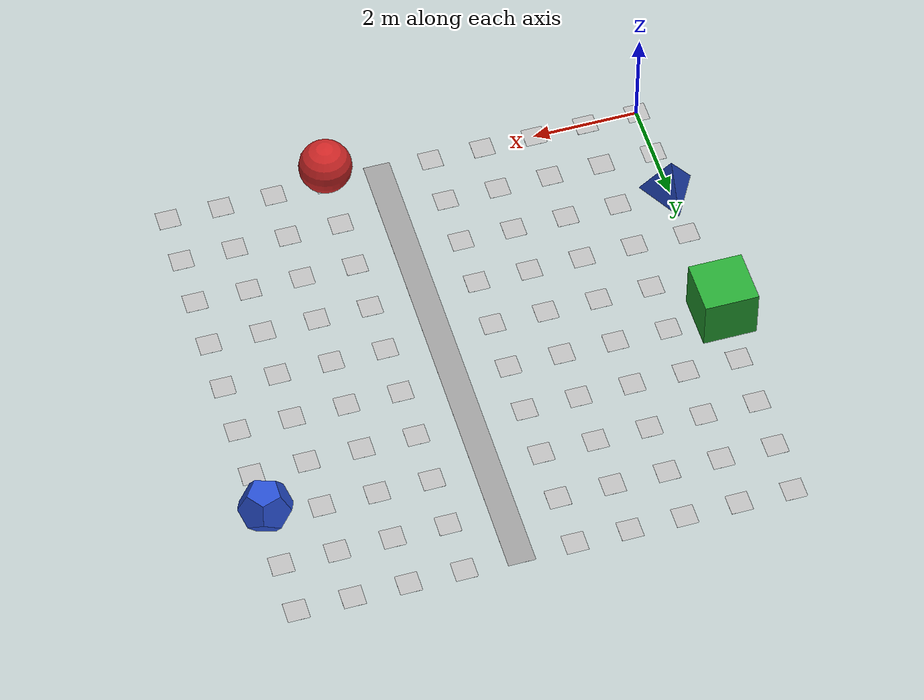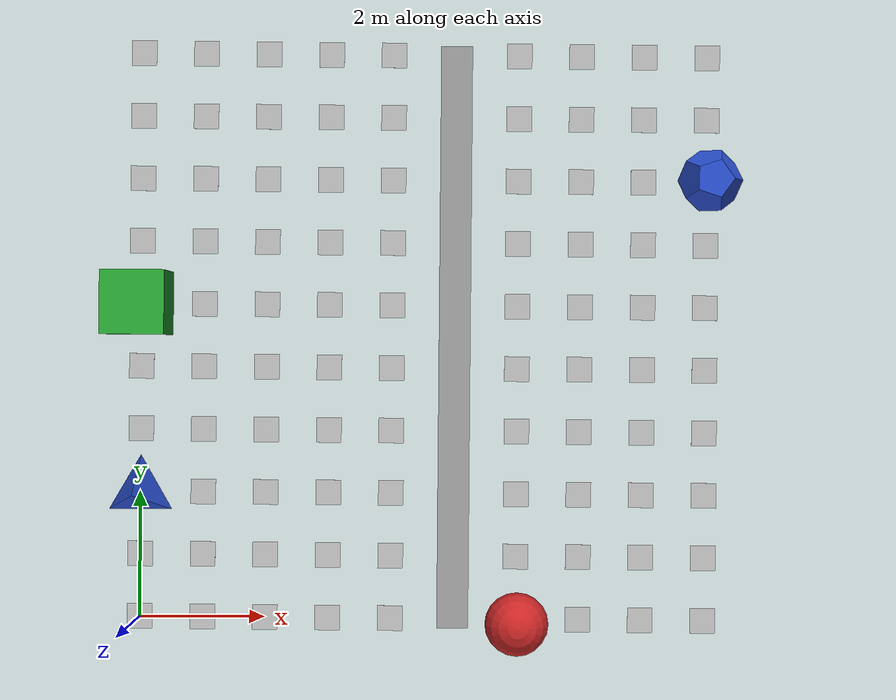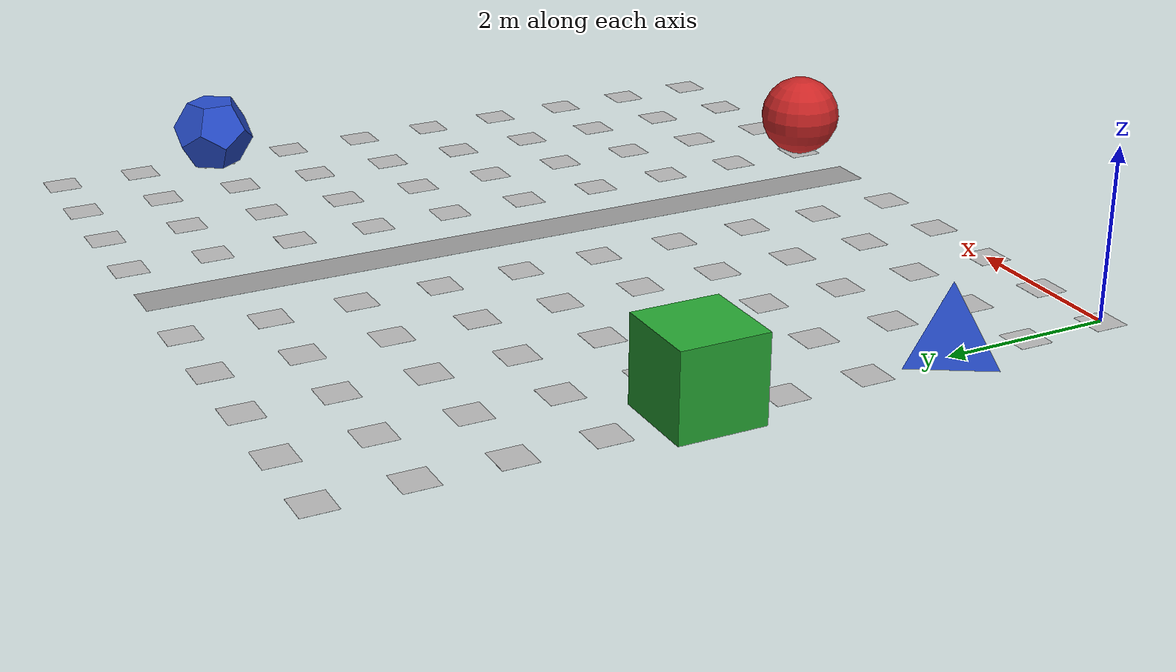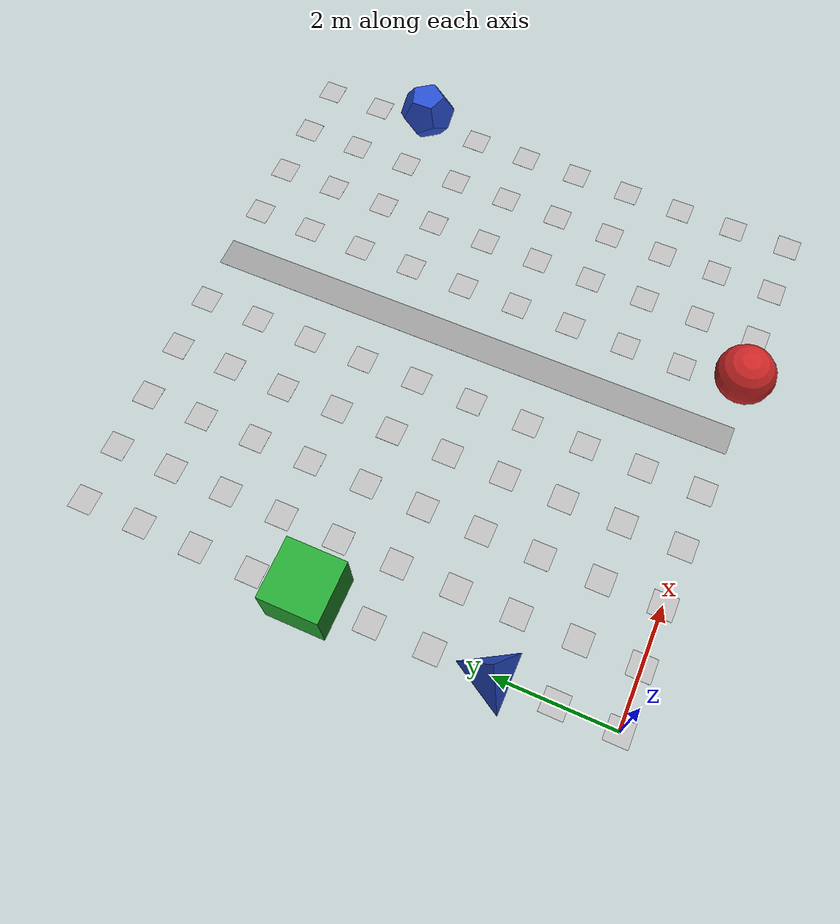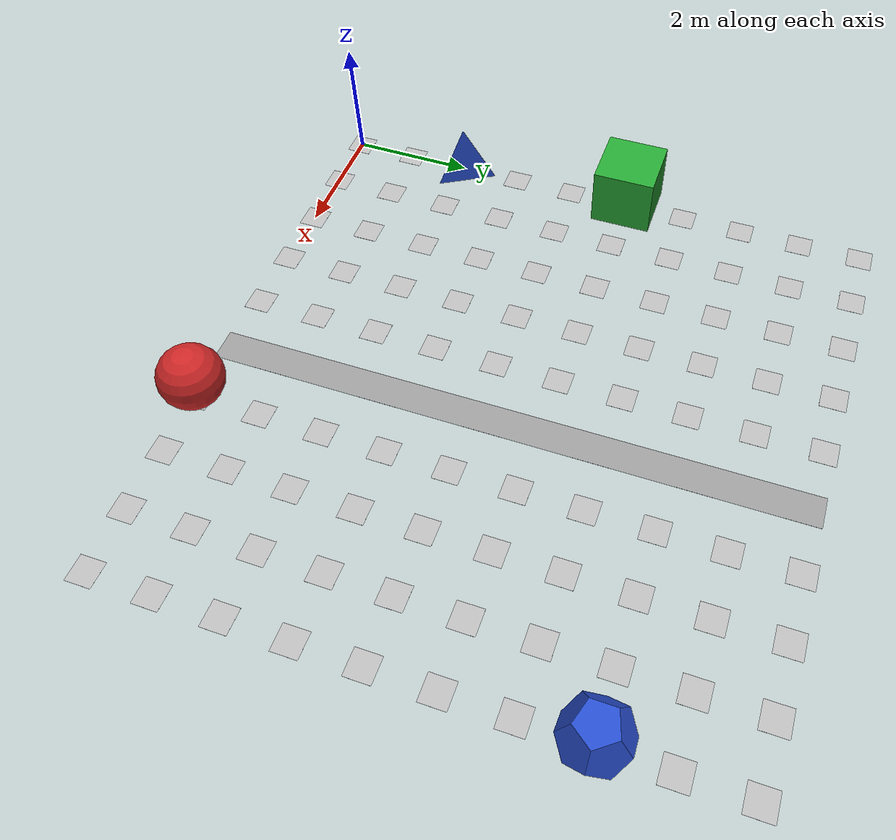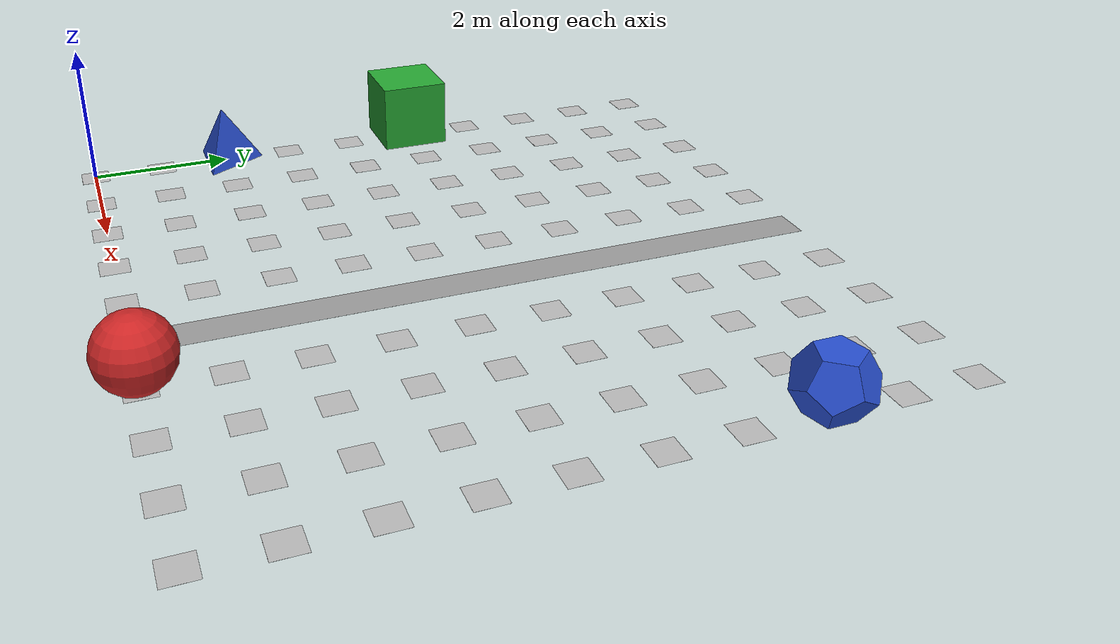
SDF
<sdf version="1.5">
 <world name="default">
  <include><uri>model://aruco_map_nto_txt</uri></include>
  <include><uri>model://sun</uri></include>
  <model name="center_line">
   <pose>5 4.5 0.01 0 0 0</pose>
   <link name="link">
    <collision name="collision"><geometry><box><size>0.5 9.3 0.001</size></box></geometry></collision>
    <visual name="visual">
     <geometry><box><size>0.5 9.3 0.001</size></box></geometry>
     <material>
      <script><name>Gazebo/Gray</name><uri>file://media/materials/scripts/gazebo.material</uri></script>
     </material>
    </visual>
   </link>
   <static>1</static>
  </model>
  <model name="sphere">
   <pose>6 0 0.5 0 0 0</pose>
   <link name="sphere_link">
    <collision name="sphere_collision"><geometry><sphere><radius>0.5</radius></sphere></geometry></collision>
    <visual name="sphere_visual">
     <geometry><sphere><radius>0.5</radius></sphere></geometry>
     <material>
      <script><name>Gazebo/Red</name><uri>file://media/materials/scripts/gazebo.material</uri></script>
     </material>
    </visual>
   </link>
   <static>1</static>
  </model>
  <model name="box">
   <pose>0 5 0.5 0 0 0</pose>
   <link name="link">
    <collision name="collision"><geometry><box><size>1 1 1</size></box></geometry></collision>
    <visual name="visual">
     <geometry><box><size>1 1 1</size></box></geometry>
     <material>
      <script><name>Gazebo/Green</name><uri>file://media/materials/scripts/gazebo.material</uri></script>
     </material>
    </visual>
   </link>
   <static>1</static>
  </model>
  <model name="TriangleS">
   <pose>0 2 0.2 0 0 0</pose>
   <link name="link_0">
    <inertial>
     <mass>1</mass>
     <inertia>
      <ixx>0.166667</ixx>
      <ixy>0</ixy>
      <ixz>0</ixz>
      <iyy>0.166667</iyy>
      <iyz>0</iyz>
      <izz>0.166667</izz>
     </inertia>
    </inertial>
    <visual name="visual">
     <geometry><mesh><uri>/home/clover/triangle.dae</uri><scale>1 1 1</scale></mesh></geometry>
     <material>
      <lighting>1</lighting>
      <script><uri>file://media/materials/scripts/gazebo.material</uri><name>Gazebo/Blue</name></script>
      <shader type="pixel"><normal_map>__default__</normal_map></shader>
      <ambient>0 0 1 1</ambient>
      <diffuse>0 0 1 1</diffuse>
      <specular>0.00 0.00 0.01 1</specular>
      <emissive>0 0 0 1</emissive>
     </material>
    </visual>
    <collision name="collision">
     <geometry><mesh><uri>/home/clover/triangle.dae</uri><scale>1 1 1</scale></mesh></geometry>
     <surface>
      <friction>
       <ode><mu>1</mu><mu2>1</mu2><fdir1>0 0 0</fdir1><slip1>0</slip1><slip2>0</slip2></ode>
       <torsional>
        <coefficient>1</coefficient>
        <patch_radius>0</patch_radius>
        <surface_radius>0</surface_radius>
        <use_patch_radius>1</use_patch_radius>
        <ode><slip>0</slip></ode>
       </torsional>
      </friction>
      <bounce><restitution_coefficient>0</restitution_coefficient><threshold>1e+06</threshold></bounce>
      <contact>
       <collide_without_contact>0</collide_without_contact>
       <collide_without_contact_bitmask>1</collide_without_contact_bitmask>
       <collide_bitmask>1</collide_bitmask>
       <ode>
        <soft_cfm>0</soft_cfm>
        <soft_erp>0.2</soft_erp>
        <kp>1e+13</kp>
        <kd>1</kd>
        <max_vel>0.01</max_vel>
        <min_depth>0</min_depth>
       </ode>
       <bullet>
        <split_impulse>1</split_impulse>
        <split_impulse_penetration_threshold>-0.01</split_impulse_penetration_threshold>
        <soft_cfm>0</soft_cfm>
        <soft_erp>0.2</soft_erp>
        <kp>1e+13</kp>
        <kd>1</kd>
       </bullet>
      </contact>
     </surface>
    </collision>
   </link>
   <static>1</static>
  </model>
  <model name="Dodecaedr">
   <pose>9 7 0.4 0 0 0</pose>
   <link name="link_1">
    <inertial>
     <mass>1</mass>
     <inertia>
      <ixx>0.166667</ixx>
      <ixy>0</ixy>
      <ixz>0</ixz>
      <iyy>0.166667</iyy>
      <iyz>0</iyz>
      <izz>0.166667</izz>
     </inertia>
    </inertial>
    <visual name="visual">
     <geometry><mesh><uri>/home/clover/dodecaedr.dae</uri><scale>1 1 1</scale></mesh></geometry>
     <material>
      <lighting>1</lighting>
      <script><uri>file://media/materials/scripts/gazebo.material</uri><name>Gazebo/Blue</name></script>
      <shader type="vertex"><normal_map>__default__</normal_map></shader>
      <ambient>1 0 1 1</ambient>
      <diffuse>1 0 1 1</diffuse>
      <specular>0.01 0 0.01 1</specular>
      <emissive>0 0 0 1</emissive>
     </material>
    </visual>
    <collision name="collision">
     <geometry><mesh><uri>/home/clover/dodecaedr.dae</uri><scale>1 1 1</scale></mesh></geometry>
     <surface>
      <friction>
       <ode><mu>1</mu><mu2>1</mu2><fdir1>0 0 0</fdir1><slip1>0</slip1><slip2>0</slip2></ode>
       <torsional>
        <coefficient>1</coefficient>
        <patch_radius>0</patch_radius>
        <surface_radius>0</surface_radius>
        <use_patch_radius>1</use_patch_radius>
        <ode><slip>0</slip></ode>
       </torsional>
      </friction>
      <bounce><restitution_coefficient>0</restitution_coefficient><threshold>1e+06</threshold></bounce>
      <contact>
       <collide_without_contact>0</collide_without_contact>
       <collide_without_contact_bitmask>1</collide_without_contact_bitmask>
       <collide_bitmask>1</collide_bitmask>
       <ode>
        <soft_cfm>0</soft_cfm>
        <soft_erp>0.2</soft_erp>
        <kp>1e+13</kp>
        <kd>1</kd>
        <max_vel>0.01</max_vel>
        <min_depth>0</min_depth>
       </ode>
       <bullet>
        <split_impulse>1</split_impulse>
        <split_impulse_penetration_threshold>-0.01</split_impulse_penetration_threshold>
        <soft_cfm>0</soft_cfm>
        <soft_erp>0.2</soft_erp>
        <kp>1e+13</kp>
        <kd>1</kd>
       </bullet>
      </contact>
     </surface>
    </collision>
   </link>
   <static>1</static>
  </model>
  <scene>
   <ambient>0.8 0.8 0.8 1</ambient>
   <background>0.8 0.9 1 1</background>
   <shadows>false</shadows>
   <grid>false</grid>
   <origin_visual>false</origin_visual>
  </scene>
  <physics name="default_physics" default="0" type="ode">
   <gravity>0 0 -9.8066</gravity>
   <ode>
    <solver>
     <type>quick</type>
     <iters>10</iters>
     <sor>1.3</sor>
     <use_dynamic_moi_rescaling>0</use_dynamic_moi_rescaling>
    </solver>
    <constraints>
     <cfm>0</cfm>
     <erp>0.2</erp>
     <contact_max_correcting_vel>100</contact_max_correcting_vel>
     <contact_surface_layer>0.001</contact_surface_layer>
    </constraints>
   </ode>
   <max_step_size>0.004</max_step_size>
   <real_time_factor>1</real_time_factor>
   <real_time_update_rate>250</real_time_update_rate>
   <magnetic_field>6.0e-6 2.3e-5 -4.2e-5</magnetic_field>
  </physics>
 </world>
</sdf>

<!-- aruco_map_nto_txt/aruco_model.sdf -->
<sdf version="1.5">
    <model name="aruco_2_90">
        <static>true</static>
        <link name="aruco_2_90_link">

<visual name="visual_marker_2_0">
    <pose>0.0 0.0 0.0 0.0 0.0 1.5707963267948966</pose>
    <cast_shadows>false</cast_shadows>
    <geometry>
        <box>
            <size>0.39999999999999997 0.39999999999999997 1e-3</size>
        </box>
    </geometry>
    <material>
        <script>
            <uri>model://aruco_map_nto_txt/materials/scripts</uri>
            <uri>model://aruco_map_nto_txt/materials/textures</uri>
            <name>aruco/marker_2_0</name>
        </script>
    </material>
</visual>

<visual name="visual_marker_2_1">
    <pose>1.0 0.0 0.0 0.0 0.0 1.5707963267948966</pose>
    <cast_shadows>false</cast_shadows>
    <geometry>
        <box>
            <size>0.39999999999999997 0.39999999999999997 1e-3</size>
        </box>
    </geometry>
    <material>
        <script>
            <uri>model://aruco_map_nto_txt/materials/scripts</uri>
            <uri>model://aruco_map_nto_txt/materials/textures</uri>
            <name>aruco/marker_2_1</name>
        </script>
    </material>
</visual>

<visual name="visual_marker_2_2">
    <pose>2.0 0.0 0.0 0.0 0.0 1.5707963267948966</pose>
    <cast_shadows>false</cast_shadows>
    <geometry>
        <box>
            <size>0.39999999999999997 0.39999999999999997 1e-3</size>
        </box>
    </geometry>
    <material>
        <script>
            <uri>model://aruco_map_nto_txt/materials/scripts</uri>
            <uri>model://aruco_map_nto_txt/materials/textures</uri>
            <name>aruco/marker_2_2</name>
        </script>
    </material>
</visual>

<visual name="visual_marker_2_3">
    <pose>3.0 0.0 0.0 0.0 0.0 1.5707963267948966</pose>
    <cast_shadows>false</cast_shadows>
    <geometry>
        <box>
            <size>0.39999999999999997 0.39999999999999997 1e-3</size>
        </box>
    </geometry>
    <material>
        <script>
            <uri>model://aruco_map_nto_txt/materials/scripts</uri>
            <uri>model://aruco_map_nto_txt/materials/textures</uri>
            <name>aruco/marker_2_3</name>
        </script>
    </material>
</visual>

<visual name="visual_marker_2_4">
    <pose>4.0 0.0 0.0 0.0 0.0 1.5707963267948966</pose>
    <cast_shadows>false</cast_shadows>
    <geometry>
        <box>
            <size>0.39999999999999997 0.39999999999999997 1e-3</size>
        </box>
    </geometry>
    <material>
        <script>
            <uri>model://aruco_map_nto_txt/materials/scripts</uri>
            <uri>model://aruco_map_nto_txt/materials/textures</uri>
            <name>aruco/marker_2_4</name>
        </script>
    </material>
</visual>

<visual name="visual_marker_2_6">
    <pose>6.0 0.0 0.0 0.0 0.0 1.5707963267948966</pose>
    <cast_shadows>false</cast_shadows>
    <geometry>
        <box>
            <size>0.39999999999999997 0.39999999999999997 1e-3</size>
        </box>
    </geometry>
    <material>
        <script>
            <uri>model://aruco_map_nto_txt/materials/scripts</uri>
            <uri>model://aruco_map_nto_txt/materials/textures</uri>
            <name>aruco/marker_2_6</name>
        </script>
    </material>
</visual>

<visual name="visual_marker_2_7">
    <pose>7.0 0.0 0.0 0.0 0.0 1.5707963267948966</pose>
    <cast_shadows>false</cast_shadows>
    <geometry>
        <box>
            <size>0.39999999999999997 0.39999999999999997 1e-3</size>
        </box>
    </geometry>
    <material>
        <script>
            <uri>model://aruco_map_nto_txt/materials/scripts</uri>
            <uri>model://aruco_map_nto_txt/materials/textures</uri>
            <name>aruco/marker_2_7</name>
        </script>
    </material>
</visual>

<visual name="visual_marker_2_8">
    <pose>8.0 0.0 0.0 0.0 0.0 1.5707963267948966</pose>
    <cast_shadows>false</cast_shadows>
    <geometry>
        <box>
            <size>0.39999999999999997 0.39999999999999997 1e-3</size>
        </box>
    </geometry>
    <material>
        <script>
            <uri>model://aruco_map_nto_txt/materials/scripts</uri>
            <uri>model://aruco_map_nto_txt/materials/textures</uri>
            <name>aruco/marker_2_8</name>
        </script>
    </material>
</visual>

<visual name="visual_marker_2_9">
    <pose>9.0 0.0 0.0 0.0 0.0 1.5707963267948966</pose>
    <cast_shadows>false</cast_shadows>
    <geometry>
        <box>
            <size>0.39999999999999997 0.39999999999999997 1e-3</size>
        </box>
    </geometry>
    <material>
        <script>
            <uri>model://aruco_map_nto_txt/materials/scripts</uri>
            <uri>model://aruco_map_nto_txt/materials/textures</uri>
            <name>aruco/marker_2_9</name>
        </script>
    </material>
</visual>

<visual name="visual_marker_2_10">
    <pose>0.0 1.0 0.0 0.0 0.0 1.5707963267948966</pose>
    <cast_shadows>false</cast_shadows>
    <geometry>
        <box>
            <size>0.39999999999999997 0.39999999999999997 1e-3</size>
        </box>
    </geometry>
    <material>
        <script>
            <uri>model://aruco_map_nto_txt/materials/scripts</uri>
            <uri>model://aruco_map_nto_txt/materials/textures</uri>
            <name>aruco/marker_2_10</name>
        </script>
    </material>
</visual>

<visual name="visual_marker_2_11">
    <pose>1.0 1.0 0.0 0.0 0.0 1.5707963267948966</pose>
    <cast_shadows>false</cast_shadows>
    <geometry>
        <box>
            <size>0.39999999999999997 0.39999999999999997 1e-3</size>
        </box>
    </geometry>
    <material>
        <script>
            <uri>model://aruco_map_nto_txt/materials/scripts</uri>
            <uri>model://aruco_map_nto_txt/materials/textures</uri>
            <name>aruco/marker_2_11</name>
        </script>
    </material>
</visual>

<visual name="visual_marker_2_12">
    <pose>2.0 1.0 0.0 0.0 0.0 1.5707963267948966</pose>
    <cast_shadows>false</cast_shadows>
    <geometry>
        <box>
            <size>0.39999999999999997 0.39999999999999997 1e-3</size>
        </box>
    </geometry>
    <material>
        <script>
            <uri>model://aruco_map_nto_txt/materials/scripts</uri>
            <uri>model://aruco_map_nto_txt/materials/textures</uri>
            <name>aruco/marker_2_12</name>
        </script>
    </material>
</visual>

<visual name="visual_marker_2_13">
    <pose>3.0 1.0 0.0 0.0 0.0 1.5707963267948966</pose>
    <cast_shadows>false</cast_shadows>
    <geometry>
        <box>
            <size>0.39999999999999997 0.39999999999999997 1e-3</size>
        </box>
    </geometry>
    <material>
        <script>
            <uri>model://aruco_map_nto_txt/materials/scripts</uri>
            <uri>model://aruco_map_nto_txt/materials/textures</uri>
            <name>aruco/marker_2_13</name>
        </script>
    </material>
</visual>

<visual name="visual_marker_2_14">
    <pose>4.0 1.0 0.0 0.0 0.0 1.5707963267948966</pose>
    <cast_shadows>false</cast_shadows>
    <geometry>
        <box>
            <size>0.39999999999999997 0.39999999999999997 1e-3</size>
        </box>
    </geometry>
    <material>
        <script>
            <uri>model://aruco_map_nto_txt/materials/scripts</uri>
            <uri>model://aruco_map_nto_txt/materials/textures</uri>
            <name>aruco/marker_2_14</name>
        </script>
    </material>
</visual>

<visual name="visual_marker_2_16">
    <pose>6.0 1.0 0.0 0.0 0.0 1.5707963267948966</pose>
    <cast_shadows>false</cast_shadows>
    <geometry>
        <box>
            <size>0.39999999999999997 0.39999999999999997 1e-3</size>
        </box>
    </geometry>
    <material>
        <script>
            <uri>model://aruco_map_nto_txt/materials/scripts</uri>
            <uri>model://aruco_map_nto_txt/materials/textures</uri>
            <name>aruco/marker_2_16</name>
        </script>
    </material>
</visual>

<visual name="visual_marker_2_17">
    <pose>7.0 1.0 0.0 0.0 0.0 1.5707963267948966</pose>
    <cast_shadows>false</cast_shadows>
    <geometry>
        <box>
            <size>0.39999999999999997 0.39999999999999997 1e-3</size>
        </box>
    </geometry>
    <material>
        <script>
            <uri>model://aruco_map_nto_txt/materials/scripts</uri>
            <uri>model://aruco_map_nto_txt/materials/textures</uri>
            <name>aruco/marker_2_17</name>
        </script>
    </material>
</visual>

<visual name="visual_marker_2_18">
    <pose>8.0 1.0 0.0 0.0 0.0 1.5707963267948966</pose>
    <cast_shadows>false</cast_shadows>
    <geometry>
        <box>
            <size>0.39999999999999997 0.39999999999999997 1e-3</size>
        </box>
    </geometry>
    <material>
        <script>
            <uri>model://aruco_map_nto_txt/materials/scripts</uri>
            <uri>model://aruco_map_nto_txt/materials/textures</uri>
            <name>aruco/marker_2_18</name>
        </script>
    </material>
</visual>

<visual name="visual_marker_2_19">
    <pose>9.0 1.0 0.0 0.0 0.0 1.5707963267948966</pose>
    <cast_shadows>false</cast_shadows>
    <geometry>
        <box>
            <size>0.39999999999999997 0.39999999999999997 1e-3</size>
        </box>
    </geometry>
    <material>
        <script>
            <uri>model://aruco_map_nto_txt/materials/scripts</uri>
            <uri>model://aruco_map_nto_txt/materials/textures</uri>
            <name>aruco/marker_2_19</name>
        </script>
    </material>
</visual>

<visual name="visual_marker_2_20">
    <pose>0.0 2.0 0.0 0.0 0.0 1.5707963267948966</pose>
    <cast_shadows>false</cast_shadows>
    <geometry>
        <box>
            <size>0.39999999999999997 0.39999999999999997 1e-3</size>
        </box>
    </geometry>
    <material>
        <script>
            <uri>model://aruco_map_nto_txt/materials/scripts</uri>
            <uri>model://aruco_map_nto_txt/materials/textures</uri>
            <name>aruco/marker_2_20</name>
        </script>
    </material>
</visual>

<visual name="visual_marker_2_21">
    <pose>1.0 2.0 0.0 0.0 0.0 1.5707963267948966</pose>
    <cast_shadows>false</cast_shadows>
    <geometry>
        <box>
            <size>0.39999999999999997 0.39999999999999997 1e-3</size>
        </box>
    </geometry>
    <material>
        <script>
            <uri>model://aruco_map_nto_txt/materials/scripts</uri>
            <uri>model://aruco_map_nto_txt/materials/textures</uri>
            <name>aruco/marker_2_21</name>
        </script>
    </material>
</visual>

<visual name="visual_marker_2_22">
    <pose>2.0 2.0 0.0 0.0 0.0 1.5707963267948966</pose>
    <cast_shadows>false</cast_shadows>
    <geometry>
        <box>
            <size>0.39999999999999997 0.39999999999999997 1e-3</size>
        </box>
    </geometry>
    <material>
        <script>
            <uri>model://aruco_map_nto_txt/materials/scripts</uri>
            <uri>model://aruco_map_nto_txt/materials/textures</uri>
            <name>aruco/marker_2_22</name>
        </script>
    </material>
</visual>

<visual name="visual_marker_2_23">
    <pose>3.0 2.0 0.0 0.0 0.0 1.5707963267948966</pose>
    <cast_shadows>false</cast_shadows>
    <geometry>
        <box>
            <size>0.39999999999999997 0.39999999999999997 1e-3</size>
        </box>
    </geometry>
    <material>
        <script>
            <uri>model://aruco_map_nto_txt/materials/scripts</uri>
            <uri>model://aruco_map_nto_txt/materials/textures</uri>
            <name>aruco/marker_2_23</name>
        </script>
    </material>
</visual>

<visual name="visual_marker_2_24">
    <pose>4.0 2.0 0.0 0.0 0.0 1.5707963267948966</pose>
    <cast_shadows>false</cast_shadows>
    <geometry>
        <box>
            <size>0.39999999999999997 0.39999999999999997 1e-3</size>
        </box>
    </geometry>
    <material>
        <script>
            <uri>model://aruco_map_nto_txt/materials/scripts</uri>
            <uri>model://aruco_map_nto_txt/materials/textures</uri>
            <name>aruco/marker_2_24</name>
        </script>
    </material>
</visual>

<visual name="visual_marker_2_26">
    <pose>6.0 2.0 0.0 0.0 0.0 1.5707963267948966</pose>
    <cast_shadows>false</cast_shadows>
    <geometry>
        <box>
            <size>0.39999999999999997 0.39999999999999997 1e-3</size>
        </box>
    </geometry>
    <material>
        <script>
            <uri>model://aruco_map_nto_txt/materials/scripts</uri>
            <uri>model://aruco_map_nto_txt/materials/textures</uri>
            <name>aruco/marker_2_26</name>
        </script>
    </material>
</visual>

<visual name="visual_marker_2_27">
    <pose>7.0 2.0 0.0 0.0 0.0 1.5707963267948966</pose>
    <cast_shadows>false</cast_shadows>
    <geometry>
        <box>
            <size>0.39999999999999997 0.39999999999999997 1e-3</size>
        </box>
    </geometry>
    <material>
        <script>
            <uri>model://aruco_map_nto_txt/materials/scripts</uri>
            <uri>model://aruco_map_nto_txt/materials/textures</uri>
            <name>aruco/marker_2_27</name>
        </script>
    </material>
</visual>

<visual name="visual_marker_2_28">
    <pose>8.0 2.0 0.0 0.0 0.0 1.5707963267948966</pose>
    <cast_shadows>false</cast_shadows>
    <geometry>
        <box>
            <size>0.39999999999999997 0.39999999999999997 1e-3</size>
        </box>
    </geometry>
    <material>
        <script>
            <uri>model://aruco_map_nto_txt/materials/scripts</uri>
            <uri>model://aruco_map_nto_txt/materials/textures</uri>
            <name>aruco/marker_2_28</name>
        </script>
    </material>
</visual>

<visual name="visual_marker_2_29">
    <pose>9.0 2.0 0.0 0.0 0.0 1.5707963267948966</pose>
    <cast_shadows>false</cast_shadows>
    <geometry>
        <box>
            <size>0.39999999999999997 0.39999999999999997 1e-3</size>
        </box>
    </geometry>
    <material>
        <script>
            <uri>model://aruco_map_nto_txt/materials/scripts</uri>
            <uri>model://aruco_map_nto_txt/materials/textures</uri>
            <name>aruco/marker_2_29</name>
        </script>
    </material>
</visual>

<visual name="visual_marker_2_30">
    <pose>0.0 3.0 0.0 0.0 0.0 1.5707963267948966</pose>
    <cast_shadows>false</cast_shadows>
    <geometry>
        <box>
            <size>0.39999999999999997 0.39999999999999997 1e-3</size>
        </box>
    </geometry>
    <material>
        <script>
            <uri>model://aruco_map_nto_txt/materials/scripts</uri>
            <uri>model://aruco_map_nto_txt/materials/textures</uri>
            <name>aruco/marker_2_30</name>
        </script>
    </material>
</visual>

<visual name="visual_marker_2_31">
    <pose>1.0 3.0 0.0 0.0 0.0 1.5707963267948966</pose>
    <cast_shadows>false</cast_shadows>
    <geometry>
        <box>
            <size>0.39999999999999997 0.39999999999999997 1e-3</size>
        </box>
    </geometry>
    <material>
        <script>
            <uri>model://aruco_map_nto_txt/materials/scripts</uri>
            <uri>model://aruco_map_nto_txt/materials/textures</uri>
            <name>aruco/marker_2_31</name>
        </script>
    </material>
</visual>

<visual name="visual_marker_2_32">
    <pose>2.0 3.0 0.0 0.0 0.0 1.5707963267948966</pose>
    <cast_shadows>false</cast_shadows>
    <geometry>
        <box>
            <size>0.39999999999999997 0.39999999999999997 1e-3</size>
        </box>
    </geometry>
    <material>
        <script>
            <uri>model://aruco_map_nto_txt/materials/scripts</uri>
            <uri>model://aruco_map_nto_txt/materials/textures</uri>
            <name>aruco/marker_2_32</name>
        </script>
    </material>
</visual>

<visual name="visual_marker_2_33">
    <pose>3.0 3.0 0.0 0.0 0.0 1.5707963267948966</pose>
    <cast_shadows>false</cast_shadows>
    <geometry>
        <box>
            <size>0.39999999999999997 0.39999999999999997 1e-3</size>
        </box>
    </geometry>
    <material>
        <script>
            <uri>model://aruco_map_nto_txt/materials/scripts</uri>
            <uri>model://aruco_map_nto_txt/materials/textures</uri>
            <name>aruco/marker_2_33</name>
        </script>
    </material>
</visual>

<visual name="visual_marker_2_34">
    <pose>4.0 3.0 0.0 0.0 0.0 1.5707963267948966</pose>
    <cast_shadows>false</cast_shadows>
    <geometry>
        <box>
            <size>0.39999999999999997 0.39999999999999997 1e-3</size>
        </box>
    </geometry>
    <material>
        <script>
            <uri>model://aruco_map_nto_txt/materials/scripts</uri>
            <uri>model://aruco_map_nto_txt/materials/textures</uri>
            <name>aruco/marker_2_34</name>
        </script>
    </material>
</visual>

<visual name="visual_marker_2_36">
    <pose>6.0 3.0 0.0 0.0 0.0 1.5707963267948966</pose>
    <cast_shadows>false</cast_shadows>
    <geometry>
        <box>
            <size>0.39999999999999997 0.39999999999999997 1e-3</size>
        </box>
    </geometry>
    <material>
        <script>
            <uri>model://aruco_map_nto_txt/materials/scripts</uri>
            <uri>model://aruco_map_nto_txt/materials/textures</uri>
            <name>aruco/marker_2_36</name>
        </script>
    </material>
</visual>

<visual name="visual_marker_2_37">
    <pose>7.0 3.0 0.0 0.0 0.0 1.5707963267948966</pose>
    <cast_shadows>false</cast_shadows>
    <geometry>
        <box>
            <size>0.39999999999999997 0.39999999999999997 1e-3</size>
        </box>
    </geometry>
    <material>
        <script>
            <uri>model://aruco_map_nto_txt/materials/scripts</uri>
            <uri>model://aruco_map_nto_txt/materials/textures</uri>
            <name>aruco/marker_2_37</name>
        </script>
    </material>
</visual>

<visual name="visual_marker_2_38">
    <pose>8.0 3.0 0.0 0.0 0.0 1.5707963267948966</pose>
    <cast_shadows>false</cast_shadows>
    <geometry>
        <box>
            <size>0.39999999999999997 0.39999999999999997 1e-3</size>
        </box>
    </geometry>
    <material>
        <script>
            <uri>model://aruco_map_nto_txt/materials/scripts</uri>
            <uri>model://aruco_map_nto_txt/materials/textures</uri>
            <name>aruco/marker_2_38</name>
        </script>
    </material>
</visual>

<visual name="visual_marker_2_39">
    <pose>9.0 3.0 0.0 0.0 0.0 1.5707963267948966</pose>
    <cast_shadows>false</cast_shadows>
    <geometry>
        <box>
            <size>0.39999999999999997 0.39999999999999997 1e-3</size>
        </box>
    </geometry>
    <material>
        <script>
            <uri>model://aruco_map_nto_txt/materials/scripts</uri>
            <uri>model://aruco_map_nto_txt/materials/textures</uri>
            <name>aruco/marker_2_39</name>
        </script>
    </material>
</visual>

<visual name="visual_marker_2_40">
    <pose>0.0 4.0 0.0 0.0 0.0 1.5707963267948966</pose>
    <cast_shadows>false</cast_shadows>
    <geometry>
        <box>
            <size>0.39999999999999997 0.39999999999999997 1e-3</size>
        </box>
    </geometry>
    <material>
        <script>
            <uri>model://aruco_map_nto_txt/materials/scripts</uri>
            <uri>model://aruco_map_nto_txt/materials/textures</uri>
            <name>aruco/marker_2_40</name>
        </script>
    </material>
</visual>

<visual name="visual_marker_2_41">
    <pose>1.0 4.0 0.0 0.0 0.0 1.5707963267948966</pose>
    <cast_shadows>false</cast_shadows>
    <geometry>
        <box>
            <size>0.39999999999999997 0.39999999999999997 1e-3</size>
        </box>
    </geometry>
    <material>
        <script>
            <uri>model://aruco_map_nto_txt/materials/scripts</uri>
            <uri>model://aruco_map_nto_txt/materials/textures</uri>
            <name>aruco/marker_2_41</name>
        </script>
    </material>
</visual>

<visual name="visual_marker_2_42">
    <pose>2.0 4.0 0.0 0.0 0.0 1.5707963267948966</pose>
    <cast_shadows>false</cast_shadows>
    <geometry>
        <box>
            <size>0.39999999999999997 0.39999999999999997 1e-3</size>
        </box>
    </geometry>
    <material>
        <script>
            <uri>model://aruco_map_nto_txt/materials/scripts</uri>
            <uri>model://aruco_map_nto_txt/materials/textures</uri>
            <name>aruco/marker_2_42</name>
        </script>
    </material>
</visual>

<visual name="visual_marker_2_43">
    <pose>3.0 4.0 0.0 0.0 0.0 1.5707963267948966</pose>
    <cast_shadows>false</cast_shadows>
    <geometry>
        <box>
            <size>0.39999999999999997 0.39999999999999997 1e-3</size>
        </box>
    </geometry>
    <material>
        <script>
            <uri>model://aruco_map_nto_txt/materials/scripts</uri>
            <uri>model://aruco_map_nto_txt/materials/textures</uri>
            <name>aruco/marker_2_43</name>
        </script>
    </material>
</visual>

<visual name="visual_marker_2_44">
    <pose>4.0 4.0 0.0 0.0 0.0 1.5707963267948966</pose>
    <cast_shadows>false</cast_shadows>
    <geometry>
        <box>
            <size>0.39999999999999997 0.39999999999999997 1e-3</size>
        </box>
    </geometry>
    <material>
        <script>
            <uri>model://aruco_map_nto_txt/materials/scripts</uri>
            <uri>model://aruco_map_nto_txt/materials/textures</uri>
            <name>aruco/marker_2_44</name>
        </script>
    </material>
</visual>

<visual name="visual_marker_2_46">
    <pose>6.0 4.0 0.0 0.0 0.0 1.5707963267948966</pose>
    <cast_shadows>false</cast_shadows>
    <geometry>
        <box>
            <size>0.39999999999999997 0.39999999999999997 1e-3</size>
        </box>
    </geometry>
    <material>
        <script>
            <uri>model://aruco_map_nto_txt/materials/scripts</uri>
            <uri>model://aruco_map_nto_txt/materials/textures</uri>
            <name>aruco/marker_2_46</name>
        </script>
    </material>
</visual>

<visual name="visual_marker_2_47">
    <pose>7.0 4.0 0.0 0.0 0.0 1.5707963267948966</pose>
    <cast_shadows>false</cast_shadows>
    <geometry>
        <box>
            <size>0.39999999999999997 0.39999999999999997 1e-3</size>
        </box>
    </geometry>
    <material>
        <script>
            <uri>model://aruco_map_nto_txt/materials/scripts</uri>
            <uri>model://aruco_map_nto_txt/materials/textures</uri>
            <name>aruco/marker_2_47</name>
        </script>
    </material>
</visual>

<visual name="visual_marker_2_48">
    <pose>8.0 4.0 0.0 0.0 0.0 1.5707963267948966</pose>
    <cast_shadows>false</cast_shadows>
    <geometry>
        <box>
            <size>0.39999999999999997 0.39999999999999997 1e-3</size>
        </box>
    </geometry>
    <material>
        <script>
            <uri>model://aruco_map_nto_txt/materials/scripts</uri>
            <uri>model://aruco_map_nto_txt/materials/textures</uri>
            <name>aruco/marker_2_48</name>
        </script>
    </material>
</visual>

<visual name="visual_marker_2_49">
    <pose>9.0 4.0 0.0 0.0 0.0 1.5707963267948966</pose>
    <cast_shadows>false</cast_shadows>
    <geometry>
        <box>
            <size>0.39999999999999997 0.39999999999999997 1e-3</size>
        </box>
    </geometry>
    <material>
        <script>
            <uri>model://aruco_map_nto_txt/materials/scripts</uri>
            <uri>model://aruco_map_nto_txt/materials/textures</uri>
            <name>aruco/marker_2_49</name>
        </script>
    </material>
</visual>

<visual name="visual_marker_2_50">
    <pose>0.0 5.0 0.0 0.0 0.0 1.5707963267948966</pose>
    <cast_shadows>false</cast_shadows>
    <geometry>
        <box>
            <size>0.39999999999999997 0.39999999999999997 1e-3</size>
        </box>
    </geometry>
    <material>
        <script>
            <uri>model://aruco_map_nto_txt/materials/scripts</uri>
            <uri>model://aruco_map_nto_txt/materials/textures</uri>
            <name>aruco/marker_2_50</name>
        </script>
    </material>
</visual>

<visual name="visual_marker_2_51">
    <pose>1.0 5.0 0.0 0.0 0.0 1.5707963267948966</pose>
    <cast_shadows>false</cast_shadows>
    <geometry>
        <box>
            <size>0.39999999999999997 0.39999999999999997 1e-3</size>
        </box>
    </geometry>
    <material>
        <script>
            <uri>model://aruco_map_nto_txt/materials/scripts</uri>
            <uri>model://aruco_map_nto_txt/materials/textures</uri>
            <name>aruco/marker_2_51</name>
        </script>
    </material>
</visual>

<visual name="visual_marker_2_52">
    <pose>2.0 5.0 0.0 0.0 0.0 1.5707963267948966</pose>
    <cast_shadows>false</cast_shadows>
    <geometry>
        <box>
            <size>0.39999999999999997 0.39999999999999997 1e-3</size>
        </box>
    </geometry>
    <material>
        <script>
            <uri>model://aruco_map_nto_txt/materials/scripts</uri>
            <uri>model://aruco_map_nto_txt/materials/textures</uri>
            <name>aruco/marker_2_52</name>
        </script>
    </material>
</visual>

<visual name="visual_marker_2_53">
    <pose>3.0 5.0 0.0 0.0 0.0 1.5707963267948966</pose>
    <cast_shadows>false</cast_shadows>
    <geometry>
        <box>
            <size>0.39999999999999997 0.39999999999999997 1e-3</size>
        </box>
    </geometry>
    <material>
        <script>
            <uri>model://aruco_map_nto_txt/materials/scripts</uri>
            <uri>model://aruco_map_nto_txt/materials/textures</uri>
            <name>aruco/marker_2_53</name>
        </script>
    </material>
</visual>

<visual name="visual_marker_2_54">
    <pose>4.0 5.0 0.0 0.0 0.0 1.5707963267948966</pose>
    <cast_shadows>false</cast_shadows>
    <geometry>
        <box>
            <size>0.39999999999999997 0.39999999999999997 1e-3</size>
        </box>
    </geometry>
    <material>
        <script>
            <uri>model://aruco_map_nto_txt/materials/scripts</uri>
            <uri>model://aruco_map_nto_txt/materials/textures</uri>
            <name>aruco/marker_2_54</name>
        </script>
    </material>
</visual>

<visual name="visual_marker_2_56">
    <pose>6.0 5.0 0.0 0.0 0.0 1.5707963267948966</pose>
    <cast_shadows>false</cast_shadows>
    <geometry>
        <box>
            <size>0.39999999999999997 0.39999999999999997 1e-3</size>
        </box>
    </geometry>
    <material>
        <script>
            <uri>model://aruco_map_nto_txt/materials/scripts</uri>
            <uri>model://aruco_map_nto_txt/materials/textures</uri>
            <name>aruco/marker_2_56</name>
        </script>
    </material>
</visual>

<visual name="visual_marker_2_57">
    <pose>7.0 5.0 0.0 0.0 0.0 1.5707963267948966</pose>
    <cast_shadows>false</cast_shadows>
    <geometry>
        <box>
            <size>0.39999999999999997 0.39999999999999997 1e-3</size>
        </box>
    </geometry>
    <material>
        <script>
            <uri>model://aruco_map_nto_txt/materials/scripts</uri>
            <uri>model://aruco_map_nto_txt/materials/textures</uri>
            <name>aruco/marker_2_57</name>
        </script>
    </material>
</visual>

<visual name="visual_marker_2_58">
    <pose>8.0 5.0 0.0 0.0 0.0 1.5707963267948966</pose>
    <cast_shadows>false</cast_shadows>
    <geometry>
        <box>
            <size>0.39999999999999997 0.39999999999999997 1e-3</size>
        </box>
    </geometry>
    <material>
        <script>
            <uri>model://aruco_map_nto_txt/materials/scripts</uri>
            <uri>model://aruco_map_nto_txt/materials/textures</uri>
            <name>aruco/marker_2_58</name>
        </script>
    </material>
</visual>

<visual name="visual_marker_2_59">
    <pose>9.0 5.0 0.0 0.0 0.0 1.5707963267948966</pose>
    <cast_shadows>false</cast_shadows>
    <geometry>
        <box>
            <size>0.39999999999999997 0.39999999999999997 1e-3</size>
        </box>
    </geometry>
    <material>
        <script>
            <uri>model://aruco_map_nto_txt/materials/scripts</uri>
            <uri>model://aruco_map_nto_txt/materials/textures</uri>
            <name>aruco/marker_2_59</name>
        </script>
    </material>
</visual>

<visual name="visual_marker_2_60">
    <pose>0.0 6.0 0.0 0.0 0.0 1.5707963267948966</pose>
    <cast_shadows>false</cast_shadows>
    <geometry>
        <box>
            <size>0.39999999999999997 0.39999999999999997 1e-3</size>
        </box>
    </geometry>
    <material>
        <script>
            <uri>model://aruco_map_nto_txt/materials/scripts</uri>
            <uri>model://aruco_map_nto_txt/materials/textures</uri>
            <name>aruco/marker_2_60</name>
        </script>
    </material>
</visual>

<visual name="visual_marker_2_61">
    <pose>1.0 6.0 0.0 0.0 0.0 1.5707963267948966</pose>
    <cast_shadows>false</cast_shadows>
    <geometry>
        <box>
            <size>0.39999999999999997 0.39999999999999997 1e-3</size>
        </box>
    </geometry>
    <material>
        <script>
            <uri>model://aruco_map_nto_txt/materials/scripts</uri>
            <uri>model://aruco_map_nto_txt/materials/textures</uri>
            <name>aruco/marker_2_61</name>
        </script>
    </material>
</visual>

<visual name="visual_marker_2_62">
    <pose>2.0 6.0 0.0 0.0 0.0 1.5707963267948966</pose>
    <cast_shadows>false</cast_shadows>
    <geometry>
        <box>
            <size>0.39999999999999997 0.39999999999999997 1e-3</size>
        </box>
    </geometry>
    <material>
        <script>
            <uri>model://aruco_map_nto_txt/materials/scripts</uri>
            <uri>model://aruco_map_nto_txt/materials/textures</uri>
            <name>aruco/marker_2_62</name>
        </script>
    </material>
</visual>

<visual name="visual_marker_2_63">
    <pose>3.0 6.0 0.0 0.0 0.0 1.5707963267948966</pose>
    <cast_shadows>false</cast_shadows>
    <geometry>
        <box>
            <size>0.39999999999999997 0.39999999999999997 1e-3</size>
        </box>
    </geometry>
    <material>
        <script>
            <uri>model://aruco_map_nto_txt/materials/scripts</uri>
            <uri>model://aruco_map_nto_txt/materials/textures</uri>
            <name>aruco/marker_2_63</name>
        </script>
    </material>
</visual>

<visual name="visual_marker_2_64">
    <pose>4.0 6.0 0.0 0.0 0.0 1.5707963267948966</pose>
    <cast_shadows>false</cast_shadows>
    <geometry>
        <box>
            <size>0.39999999999999997 0.39999999999999997 1e-3</size>
        </box>
    </geometry>
    <material>
        <script>
            <uri>model://aruco_map_nto_txt/materials/scripts</uri>
            <uri>model://aruco_map_nto_txt/materials/textures</uri>
            <name>aruco/marker_2_64</name>
        </script>
    </material>
</visual>

<visual name="visual_marker_2_66">
    <pose>6.0 6.0 0.0 0.0 0.0 1.5707963267948966</pose>
    <cast_shadows>false</cast_shadows>
    <geometry>
        <box>
            <size>0.39999999999999997 0.39999999999999997 1e-3</size>
        </box>
    </geometry>
    <material>
        <script>
            <uri>model://aruco_map_nto_txt/materials/scripts</uri>
            <uri>model://aruco_map_nto_txt/materials/textures</uri>
            <name>aruco/marker_2_66</name>
        </script>
    </material>
</visual>

<visual name="visual_marker_2_67">
    <pose>7.0 6.0 0.0 0.0 0.0 1.5707963267948966</pose>
    <cast_shadows>false</cast_shadows>
    <geometry>
        <box>
            <size>0.39999999999999997 0.39999999999999997 1e-3</size>
        </box>
    </geometry>
    <material>
        <script>
            <uri>model://aruco_map_nto_txt/materials/scripts</uri>
            <uri>model://aruco_map_nto_txt/materials/textures</uri>
            <name>aruco/marker_2_67</name>
        </script>
    </material>
</visual>

<visual name="visual_marker_2_68">
    <pose>8.0 6.0 0.0 0.0 0.0 1.5707963267948966</pose>
    <cast_shadows>false</cast_shadows>
    <geometry>
        <box>
            <size>0.39999999999999997 0.39999999999999997 1e-3</size>
        </box>
    </geometry>
    <material>
        <script>
            <uri>model://aruco_map_nto_txt/materials/scripts</uri>
            <uri>model://aruco_map_nto_txt/materials/textures</uri>
            <name>aruco/marker_2_68</name>
        </script>
    </material>
</visual>

<visual name="visual_marker_2_69">
    <pose>9.0 6.0 0.0 0.0 0.0 1.5707963267948966</pose>
    <cast_shadows>false</cast_shadows>
    <geometry>
        <box>
            <size>0.39999999999999997 0.39999999999999997 1e-3</size>
        </box>
    </geometry>
    <material>
        <script>
            <uri>model://aruco_map_nto_txt/materials/scripts</uri>
            <uri>model://aruco_map_nto_txt/materials/textures</uri>
            <name>aruco/marker_2_69</name>
        </script>
    </material>
</visual>

<visual name="visual_marker_2_70">
    <pose>0.0 7.0 0.0 0.0 0.0 1.5707963267948966</pose>
    <cast_shadows>false</cast_shadows>
    <geometry>
        <box>
            <size>0.39999999999999997 0.39999999999999997 1e-3</size>
        </box>
    </geometry>
    <material>
        <script>
            <uri>model://aruco_map_nto_txt/materials/scripts</uri>
            <uri>model://aruco_map_nto_txt/materials/textures</uri>
            <name>aruco/marker_2_70</name>
        </script>
    </material>
</visual>

<visual name="visual_marker_2_71">
    <pose>1.0 7.0 0.0 0.0 0.0 1.5707963267948966</pose>
    <cast_shadows>false</cast_shadows>
    <geometry>
        <box>
            <size>0.39999999999999997 0.39999999999999997 1e-3</size>
        </box>
    </geometry>
    <material>
        <script>
            <uri>model://aruco_map_nto_txt/materials/scripts</uri>
            <uri>model://aruco_map_nto_txt/materials/textures</uri>
            <name>aruco/marker_2_71</name>
        </script>
    </material>
</visual>

<visual name="visual_marker_2_72">
    <pose>2.0 7.0 0.0 0.0 0.0 1.5707963267948966</pose>
    <cast_shadows>false</cast_shadows>
    <geometry>
        <box>
            <size>0.39999999999999997 0.39999999999999997 1e-3</size>
        </box>
    </geometry>
    <material>
        <script>
            <uri>model://aruco_map_nto_txt/materials/scripts</uri>
            <uri>model://aruco_map_nto_txt/materials/textures</uri>
            <name>aruco/marker_2_72</name>
        </script>
    </material>
</visual>

<visual name="visual_marker_2_73">
    <pose>3.0 7.0 0.0 0.0 0.0 1.5707963267948966</pose>
    <cast_shadows>false</cast_shadows>
    <geometry>
        <box>
            <size>0.39999999999999997 0.39999999999999997 1e-3</size>
        </box>
    </geometry>
    <material>
        <script>
            <uri>model://aruco_map_nto_txt/materials/scripts</uri>
            <uri>model://aruco_map_nto_txt/materials/textures</uri>
            <name>aruco/marker_2_73</name>
        </script>
    </material>
</visual>

<visual name="visual_marker_2_74">
    <pose>4.0 7.0 0.0 0.0 0.0 1.5707963267948966</pose>
    <cast_shadows>false</cast_shadows>
    <geometry>
        <box>
            <size>0.39999999999999997 0.39999999999999997 1e-3</size>
        </box>
    </geometry>
    <material>
        <script>
            <uri>model://aruco_map_nto_txt/materials/scripts</uri>
            <uri>model://aruco_map_nto_txt/materials/textures</uri>
            <name>aruco/marker_2_74</name>
        </script>
    </material>
</visual>

<visual name="visual_marker_2_76">
    <pose>6.0 7.0 0.0 0.0 0.0 1.5707963267948966</pose>
    <cast_shadows>false</cast_shadows>
    <geometry>
        <box>
            <size>0.39999999999999997 0.39999999999999997 1e-3</size>
        </box>
    </geometry>
    <material>
        <script>
            <uri>model://aruco_map_nto_txt/materials/scripts</uri>
            <uri>model://aruco_map_nto_txt/materials/textures</uri>
            <name>aruco/marker_2_76</name>
        </script>
    </material>
</visual>

<visual name="visual_marker_2_77">
    <pose>7.0 7.0 0.0 0.0 0.0 1.5707963267948966</pose>
    <cast_shadows>false</cast_shadows>
    <geometry>
        <box>
            <size>0.39999999999999997 0.39999999999999997 1e-3</size>
        </box>
    </geometry>
    <material>
        <script>
            <uri>model://aruco_map_nto_txt/materials/scripts</uri>
            <uri>model://aruco_map_nto_txt/materials/textures</uri>
            <name>aruco/marker_2_77</name>
        </script>
    </material>
</visual>

<visual name="visual_marker_2_78">
    <pose>8.0 7.0 0.0 0.0 0.0 1.5707963267948966</pose>
    <cast_shadows>false</cast_shadows>
    <geometry>
        <box>
            <size>0.39999999999999997 0.39999999999999997 1e-3</size>
        </box>
    </geometry>
    <material>
        <script>
            <uri>model://aruco_map_nto_txt/materials/scripts</uri>
            <uri>model://aruco_map_nto_txt/materials/textures</uri>
            <name>aruco/marker_2_78</name>
        </script>
    </material>
</visual>

<visual name="visual_marker_2_79">
    <pose>9.0 7.0 0.0 0.0 0.0 1.5707963267948966</pose>
    <cast_shadows>false</cast_shadows>
    <geometry>
        <box>
            <size>0.39999999999999997 0.39999999999999997 1e-3</size>
        </box>
    </geometry>
    <material>
        <script>
            <uri>model://aruco_map_nto_txt/materials/scripts</uri>
            <uri>model://aruco_map_nto_txt/materials/textures</uri>
            <name>aruco/marker_2_79</name>
        </script>
    </material>
</visual>

<visual name="visual_marker_2_80">
    <pose>0.0 8.0 0.0 0.0 0.0 1.5707963267948966</pose>
    <cast_shadows>false</cast_shadows>
    <geometry>
        <box>
            <size>0.39999999999999997 0.39999999999999997 1e-3</size>
        </box>
    </geometry>
    <material>
        <script>
            <uri>model://aruco_map_nto_txt/materials/scripts</uri>
            <uri>model://aruco_map_nto_txt/materials/textures</uri>
            <name>aruco/marker_2_80</name>
        </script>
    </material>
</visual>

<visual name="visual_marker_2_81">
    <pose>1.0 8.0 0.0 0.0 0.0 1.5707963267948966</pose>
    <cast_shadows>false</cast_shadows>
    <geometry>
        <box>
            <size>0.39999999999999997 0.39999999999999997 1e-3</size>
        </box>
    </geometry>
    <material>
        <script>
            <uri>model://aruco_map_nto_txt/materials/scripts</uri>
            <uri>model://aruco_map_nto_txt/materials/textures</uri>
            <name>aruco/marker_2_81</name>
        </script>
    </material>
</visual>

<visual name="visual_marker_2_82">
    <pose>2.0 8.0 0.0 0.0 0.0 1.5707963267948966</pose>
    <cast_shadows>false</cast_shadows>
    <geometry>
        <box>
            <size>0.39999999999999997 0.39999999999999997 1e-3</size>
        </box>
    </geometry>
    <material>
        <script>
            <uri>model://aruco_map_nto_txt/materials/scripts</uri>
            <uri>model://aruco_map_nto_txt/materials/textures</uri>
            <name>aruco/marker_2_82</name>
        </script>
    </material>
</visual>

<visual name="visual_marker_2_83">
    <pose>3.0 8.0 0.0 0.0 0.0 1.5707963267948966</pose>
    <cast_shadows>false</cast_shadows>
    <geometry>
        <box>
            <size>0.39999999999999997 0.39999999999999997 1e-3</size>
        </box>
    </geometry>
    <material>
        <script>
            <uri>model://aruco_map_nto_txt/materials/scripts</uri>
            <uri>model://aruco_map_nto_txt/materials/textures</uri>
            <name>aruco/marker_2_83</name>
        </script>
    </material>
</visual>

<visual name="visual_marker_2_84">
    <pose>4.0 8.0 0.0 0.0 0.0 1.5707963267948966</pose>
    <cast_shadows>false</cast_shadows>
    <geometry>
        <box>
            <size>0.39999999999999997 0.39999999999999997 1e-3</size>
        </box>
    </geometry>
    <material>
        <script>
            <uri>model://aruco_map_nto_txt/materials/scripts</uri>
            <uri>model://aruco_map_nto_txt/materials/textures</uri>
            <name>aruco/marker_2_84</name>
        </script>
    </material>
</visual>

<visual name="visual_marker_2_86">
    <pose>6.0 8.0 0.0 0.0 0.0 1.5707963267948966</pose>
    <cast_shadows>false</cast_shadows>
    <geometry>
        <box>
            <size>0.39999999999999997 0.39999999999999997 1e-3</size>
        </box>
    </geometry>
    <material>
        <script>
            <uri>model://aruco_map_nto_txt/materials/scripts</uri>
            <uri>model://aruco_map_nto_txt/materials/textures</uri>
            <name>aruco/marker_2_86</name>
        </script>
    </material>
</visual>

<visual name="visual_marker_2_87">
    <pose>7.0 8.0 0.0 0.0 0.0 1.5707963267948966</pose>
    <cast_shadows>false</cast_shadows>
    <geometry>
        <box>
            <size>0.39999999999999997 0.39999999999999997 1e-3</size>
        </box>
    </geometry>
    <material>
        <script>
            <uri>model://aruco_map_nto_txt/materials/scripts</uri>
            <uri>model://aruco_map_nto_txt/materials/textures</uri>
            <name>aruco/marker_2_87</name>
        </script>
    </material>
</visual>

<visual name="visual_marker_2_88">
    <pose>8.0 8.0 0.0 0.0 0.0 1.5707963267948966</pose>
    <cast_shadows>false</cast_shadows>
    <geometry>
        <box>
            <size>0.39999999999999997 0.39999999999999997 1e-3</size>
        </box>
    </geometry>
    <material>
        <script>
            <uri>model://aruco_map_nto_txt/materials/scripts</uri>
            <uri>model://aruco_map_nto_txt/materials/textures</uri>
            <name>aruco/marker_2_88</name>
        </script>
    </material>
</visual>

<visual name="visual_marker_2_89">
    <pose>9.0 8.0 0.0 0.0 0.0 1.5707963267948966</pose>
    <cast_shadows>false</cast_shadows>
    <geometry>
        <box>
            <size>0.39999999999999997 0.39999999999999997 1e-3</size>
        </box>
    </geometry>
    <material>
        <script>
            <uri>model://aruco_map_nto_txt/materials/scripts</uri>
            <uri>model://aruco_map_nto_txt/materials/textures</uri>
            <name>aruco/marker_2_89</name>
        </script>
    </material>
</visual>

<visual name="visual_marker_2_90">
    <pose>0.0 9.0 0.0 0.0 0.0 1.5707963267948966</pose>
    <cast_shadows>false</cast_shadows>
    <geometry>
        <box>
            <size>0.39999999999999997 0.39999999999999997 1e-3</size>
        </box>
    </geometry>
    <material>
        <script>
            <uri>model://aruco_map_nto_txt/materials/scripts</uri>
            <uri>model://aruco_map_nto_txt/materials/textures</uri>
            <name>aruco/marker_2_90</name>
        </script>
    </material>
</visual>

<visual name="visual_marker_2_91">
    <pose>1.0 9.0 0.0 0.0 0.0 1.5707963267948966</pose>
    <cast_shadows>false</cast_shadows>
    <geometry>
        <box>
            <size>0.39999999999999997 0.39999999999999997 1e-3</size>
        </box>
    </geometry>
    <material>
        <script>
            <uri>model://aruco_map_nto_txt/materials/scripts</uri>
            <uri>model://aruco_map_nto_txt/materials/textures</uri>
            <name>aruco/marker_2_91</name>
        </script>
    </material>
</visual>

<visual name="visual_marker_2_92">
    <pose>2.0 9.0 0.0 0.0 0.0 1.5707963267948966</pose>
    <cast_shadows>false</cast_shadows>
    <geometry>
        <box>
            <size>0.39999999999999997 0.39999999999999997 1e-3</size>
        </box>
    </geometry>
    <material>
        <script>
            <uri>model://aruco_map_nto_txt/materials/scripts</uri>
            <uri>model://aruco_map_nto_txt/materials/textures</uri>
            <name>aruco/marker_2_92</name>
        </script>
    </material>
</visual>

<visual name="visual_marker_2_93">
    <pose>3.0 9.0 0.0 0.0 0.0 1.5707963267948966</pose>
    <cast_shadows>false</cast_shadows>
    <geometry>
        <box>
            <size>0.39999999999999997 0.39999999999999997 1e-3</size>
        </box>
    </geometry>
    <material>
        <script>
            <uri>model://aruco_map_nto_txt/materials/scripts</uri>
            <uri>model://aruco_map_nto_txt/materials/textures</uri>
            <name>aruco/marker_2_93</name>
        </script>
    </material>
</visual>

<visual name="visual_marker_2_94">
    <pose>4.0 9.0 0.0 0.0 0.0 1.5707963267948966</pose>
    <cast_shadows>false</cast_shadows>
    <geometry>
        <box>
            <size>0.39999999999999997 0.39999999999999997 1e-3</size>
        </box>
    </geometry>
    <material>
        <script>
            <uri>model://aruco_map_nto_txt/materials/scripts</uri>
            <uri>model://aruco_map_nto_txt/materials/textures</uri>
            <name>aruco/marker_2_94</name>
        </script>
    </material>
</visual>

<visual name="visual_marker_2_96">
    <pose>6.0 9.0 0.0 0.0 0.0 1.5707963267948966</pose>
    <cast_shadows>false</cast_shadows>
    <geometry>
        <box>
            <size>0.39999999999999997 0.39999999999999997 1e-3</size>
        </box>
    </geometry>
    <material>
        <script>
            <uri>model://aruco_map_nto_txt/materials/scripts</uri>
            <uri>model://aruco_map_nto_txt/materials/textures</uri>
            <name>aruco/marker_2_96</name>
        </script>
    </material>
</visual>

<visual name="visual_marker_2_97">
    <pose>7.0 9.0 0.0 0.0 0.0 1.5707963267948966</pose>
    <cast_shadows>false</cast_shadows>
    <geometry>
        <box>
            <size>0.39999999999999997 0.39999999999999997 1e-3</size>
        </box>
    </geometry>
    <material>
        <script>
            <uri>model://aruco_map_nto_txt/materials/scripts</uri>
            <uri>model://aruco_map_nto_txt/materials/textures</uri>
            <name>aruco/marker_2_97</name>
        </script>
    </material>
</visual>

<visual name="visual_marker_2_98">
    <pose>8.0 9.0 0.0 0.0 0.0 1.5707963267948966</pose>
    <cast_shadows>false</cast_shadows>
    <geometry>
        <box>
            <size>0.39999999999999997 0.39999999999999997 1e-3</size>
        </box>
    </geometry>
    <material>
        <script>
            <uri>model://aruco_map_nto_txt/materials/scripts</uri>
            <uri>model://aruco_map_nto_txt/materials/textures</uri>
            <name>aruco/marker_2_98</name>
        </script>
    </material>
</visual>

<visual name="visual_marker_2_99">
    <pose>9.0 9.0 0.0 0.0 0.0 1.5707963267948966</pose>
    <cast_shadows>false</cast_shadows>
    <geometry>
        <box>
            <size>0.39999999999999997 0.39999999999999997 1e-3</size>
        </box>
    </geometry>
    <material>
        <script>
            <uri>model://aruco_map_nto_txt/materials/scripts</uri>
            <uri>model://aruco_map_nto_txt/materials/textures</uri>
            <name>aruco/marker_2_99</name>
        </script>
    </material>
</visual>

        </link>
    </model>
</sdf>
